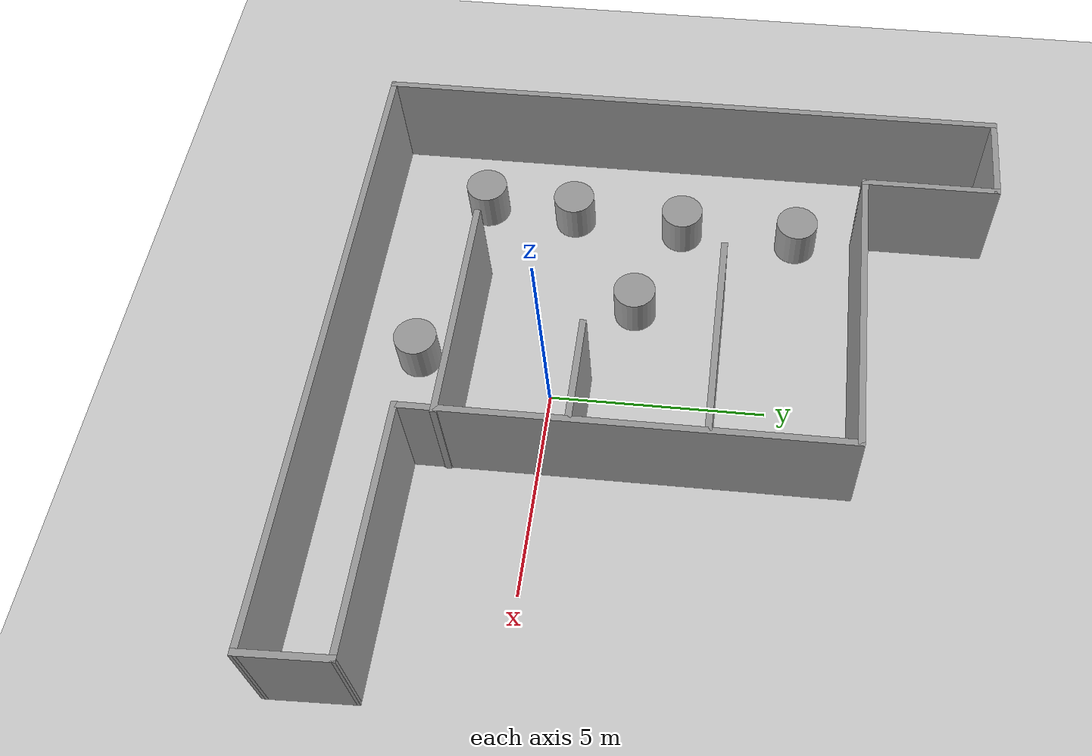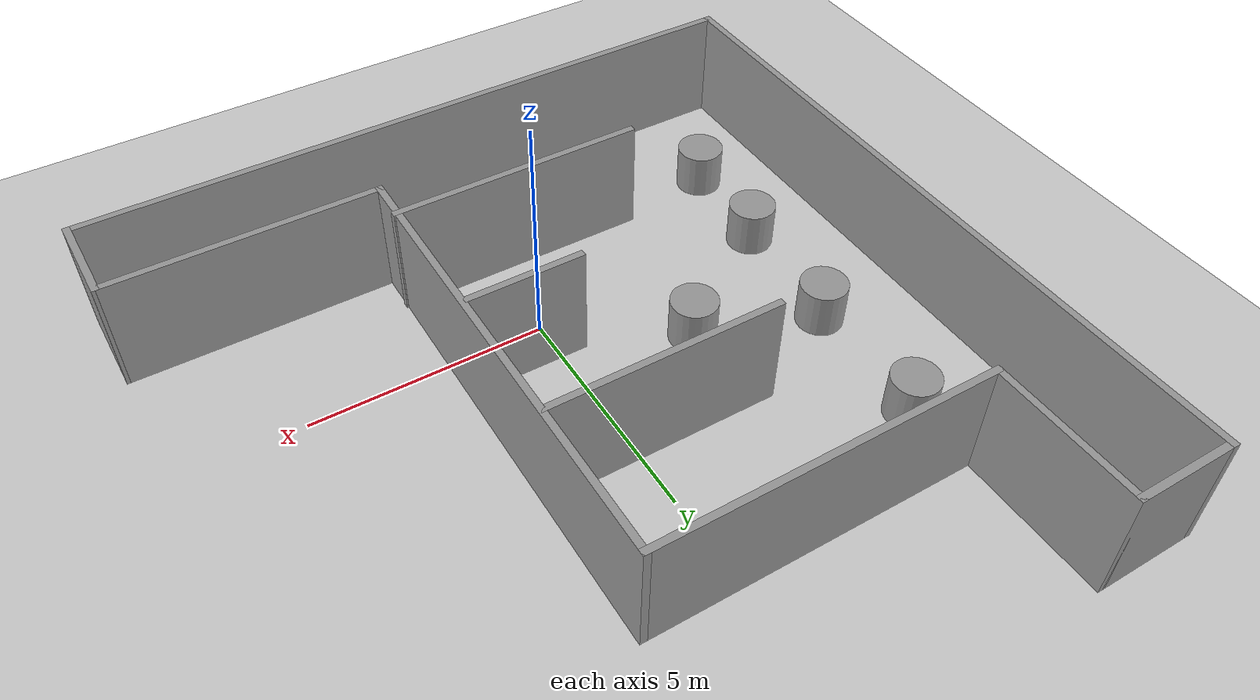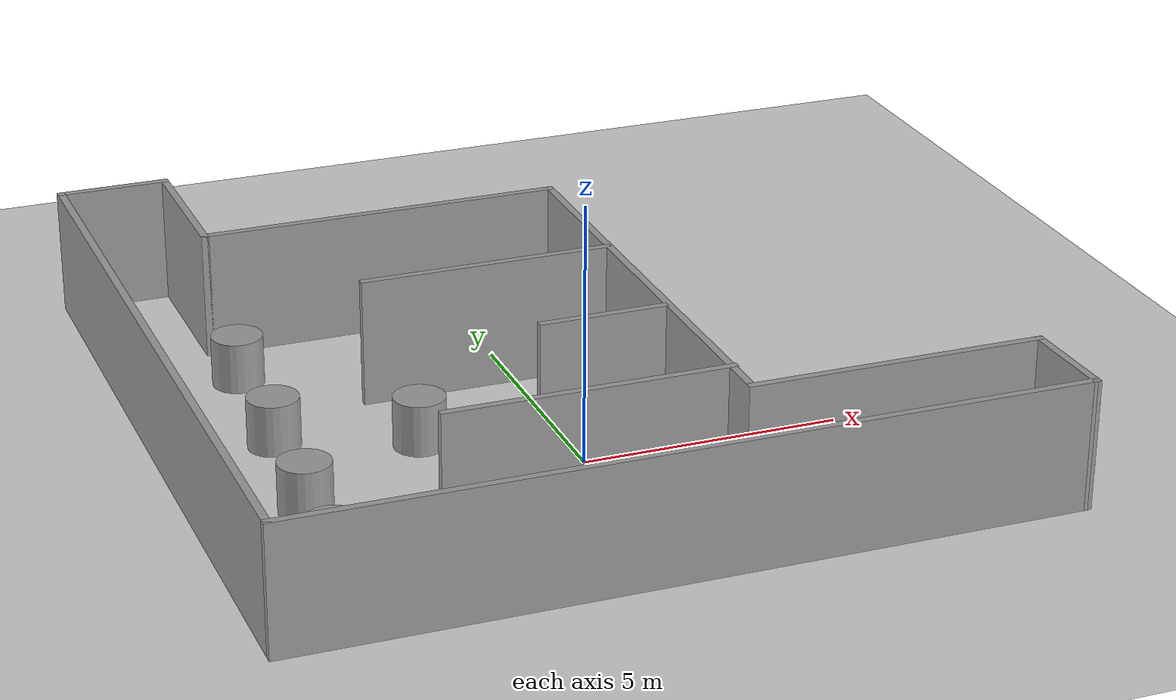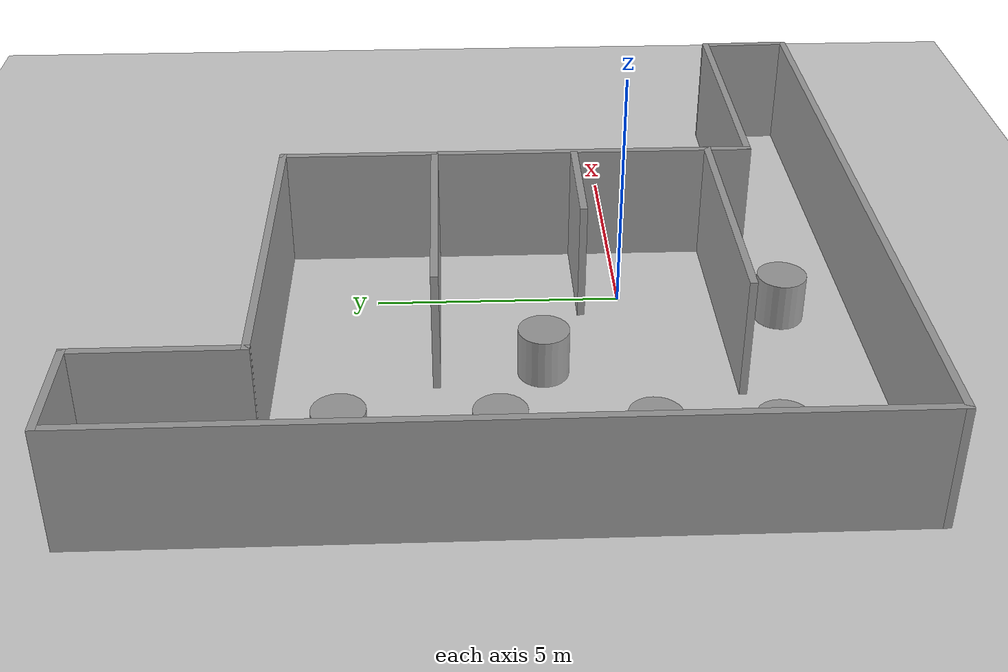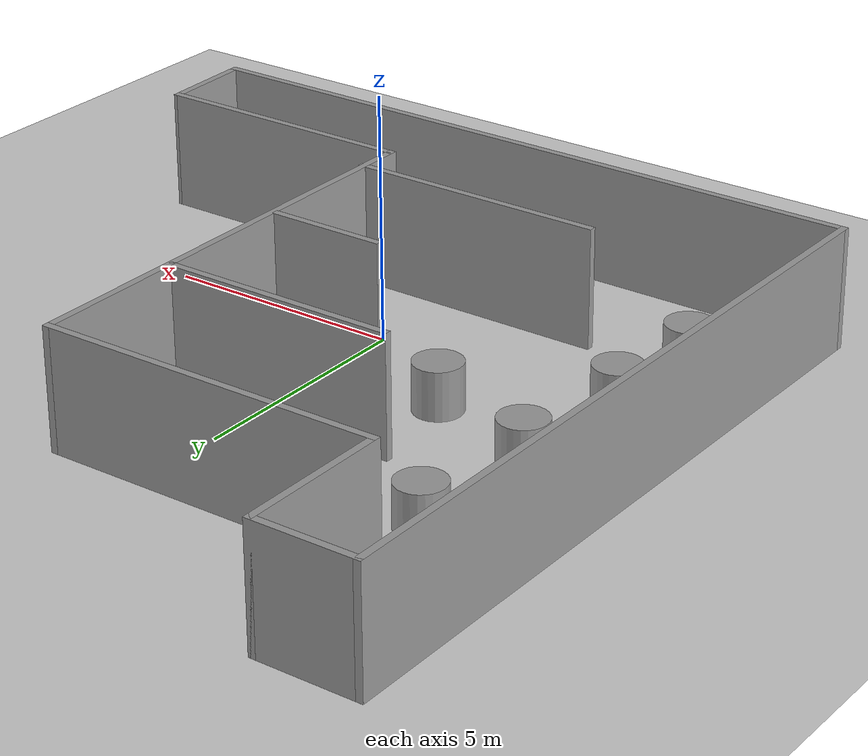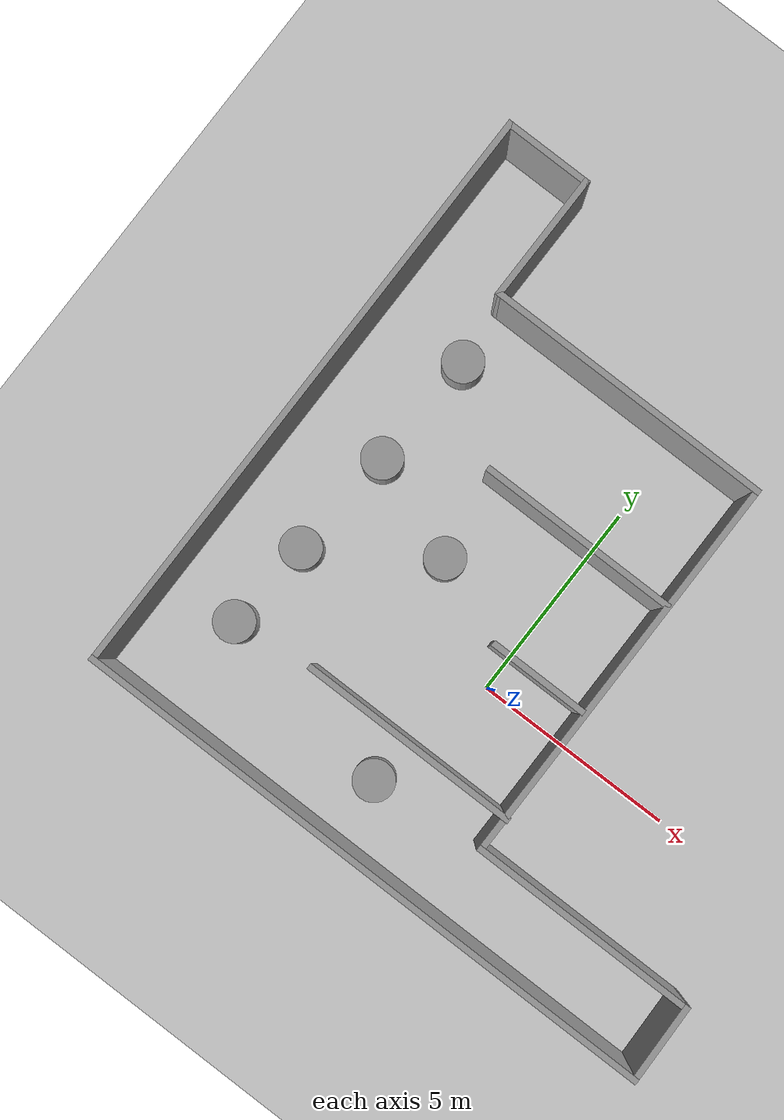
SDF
<sdf version="1.7">
 <world name="default">
  <light name="sun" type="directional">
   <pose>0 0 10 0 -0 0</pose>
   <diffuse>0.8 0.8 0.8 1</diffuse>
   <specular>0.2 0.2 0.2 1</specular>
   <attenuation>
    <range>1000</range>
    <constant>0.9</constant>
    <linear>0.01</linear>
    <quadratic>0.001</quadratic>
   </attenuation>
   <direction>-0.5 0.1 -0.9</direction>
   <spot><inner_angle>0</inner_angle><outer_angle>0</outer_angle><falloff>0</falloff></spot>
  </light>
  <model name="ground_plane">
   <static>1</static>
   <link name="link">
    <collision name="collision">
     <geometry><plane><normal>0 0 1</normal><size>100 100</size></plane></geometry>
     <surface>
      <contact><collide_bitmask>65535</collide_bitmask></contact>
      <friction><ode><mu>100</mu><mu2>50</mu2></ode></friction>
     </surface>
    </collision>
    <visual name="visual">
     <cast_shadows>0</cast_shadows>
     <geometry><plane><normal>0 0 1</normal><size>100 100</size></plane></geometry>
     <material>
      <script><uri>file://media/materials/scripts/gazebo.material</uri><name>Gazebo/Grey</name></script>
     </material>
    </visual>
   </link>
  </model>
  <gravity>0 0 -9.8</gravity>
  <magnetic_field>6e-06 2.3e-05 -4.2e-05</magnetic_field>
  <atmosphere type="adiabatic"/>
  <physics type="ode">
   <max_step_size>0.001</max_step_size>
   <real_time_factor>1</real_time_factor>
   <real_time_update_rate>1000</real_time_update_rate>
  </physics>
  <scene><ambient>0.4 0.4 0.4 1</ambient><background>0.7 0.7 0.7 1</background><shadows>1</shadows></scene>
  <audio><device>default</device></audio>
  <spherical_coordinates>
   <surface_model>EARTH_WGS84</surface_model>
   <latitude_deg>0</latitude_deg>
   <longitude_deg>0</longitude_deg>
   <elevation>0</elevation>
   <heading_deg>0</heading_deg>
  </spherical_coordinates>
  <model name="seinad">
   <pose>0.185973 2.64403 0 0 -0 0</pose>
   <link name="Wall_0">
    <collision name="Wall_0_Collision">
     <geometry><box><size>15 0.15 2.5</size></box></geometry>
     <pose>0 0 1.25 0 -0 0</pose>
    </collision>
    <visual name="Wall_0_Visual">
     <pose>0 0 1.25 0 -0 0</pose>
     <geometry><box><size>15 0.15 2.5</size></box></geometry>
     <material>
      <script><uri>file://media/materials/scripts/gazebo.material</uri><name>Gazebo/Grey</name></script>
      <ambient>1 1 1 1</ambient>
     </material>
     <meta><layer>0</layer></meta>
    </visual>
    <pose>-0.000973 -7.42403 0 0 -0 0</pose>
   </link>
   <link name="Wall_11">
    <collision name="Wall_11_Collision">
     <geometry><box><size>5 0.15 2.5</size></box></geometry>
     <pose>0 0 1.25 0 -0 0</pose>
    </collision>
    <visual name="Wall_11_Visual">
     <pose>0 0 1.25 0 -0 0</pose>
     <geometry><box><size>5 0.15 2.5</size></box></geometry>
     <material>
      <script><uri>file://media/materials/scripts/gazebo.material</uri><name>Gazebo/Grey</name></script>
      <ambient>1 1 1 1</ambient>
     </material>
     <meta><layer>0</layer></meta>
    </visual>
    <pose>-0.689029 1.13614 0 0 -0 3.14159</pose>
   </link>
   <link name="Wall_13">
    <collision name="Wall_13_Collision">
     <geometry><box><size>5.5 0.15 2.5</size></box></geometry>
     <pose>0 0 1.25 0 -0 0</pose>
    </collision>
    <visual name="Wall_13_Visual">
     <pose>0 0 1.25 0 -0 0</pose>
     <geometry><box><size>5.5 0.15 2.5</size></box></geometry>
     <material>
      <script><uri>file://media/materials/scripts/gazebo.material</uri><name>Gazebo/Grey</name></script>
      <ambient>1 1 1 1</ambient>
     </material>
     <meta><layer>0</layer></meta>
    </visual>
    <pose>-0.868672 -4.66835 0 0 -0 3.14159</pose>
   </link>
   <link name="Wall_16">
    <collision name="Wall_16_Collision">
     <geometry><box><size>2.5 0.15 2.5</size></box></geometry>
     <pose>0 0 1.25 0 -0 0</pose>
    </collision>
    <visual name="Wall_16_Visual">
     <pose>0 0 1.25 0 -0 0</pose>
     <geometry><box><size>2.5 0.15 2.5</size></box></geometry>
     <material>
      <script><uri>file://media/materials/scripts/gazebo.material</uri><name>Gazebo/Grey</name></script>
      <ambient>1 1 1 1</ambient>
     </material>
     <meta><layer>0</layer></meta>
    </visual>
    <pose>0.490613 -1.81887 0 0 -0 3.14159</pose>
   </link>
   <link name="Wall_2">
    <collision name="Wall_2_Collision">
     <geometry><box><size>15 0.15 2.5</size></box></geometry>
     <pose>0 0 1.25 0 -0 0</pose>
    </collision>
    <visual name="Wall_2_Visual">
     <pose>0 0 1.25 0 -0 0</pose>
     <geometry><box><size>15 0.15 2.5</size></box></geometry>
     <material>
      <script><uri>file://media/materials/scripts/gazebo.material</uri><name>Gazebo/Grey</name></script>
      <ambient>1 1 1 1</ambient>
     </material>
     <meta><layer>0</layer></meta>
    </visual>
    <pose>-7.42597 0.000973 0 0 -0 1.5708</pose>
   </link>
   <link name="Wall_4">
    <collision name="Wall_4_Collision">
     <geometry><box><size>2.25 0.15 2.5</size></box></geometry>
     <pose>0 0 1.25 0 -0 0</pose>
    </collision>
    <visual name="Wall_4_Visual">
     <pose>0 0 1.25 0 -0 0</pose>
     <geometry><box><size>2.25 0.15 2.5</size></box></geometry>
     <material>
      <script><uri>file://media/materials/scripts/gazebo.material</uri><name>Gazebo/Grey</name></script>
      <ambient>1 1 1 1</ambient>
     </material>
     <meta><layer>0</layer></meta>
    </visual>
    <pose>-6.37597 7.42597 0 0 -0 0</pose>
   </link>
   <link name="Wall_5">
    <collision name="Wall_5_Collision">
     <geometry><box><size>3.25 0.15 2.5</size></box></geometry>
     <pose>0 0 1.25 0 -0 0</pose>
    </collision>
    <visual name="Wall_5_Visual">
     <pose>0 0 1.25 0 -0 0</pose>
     <geometry><box><size>3.25 0.15 2.5</size></box></geometry>
     <material>
      <script><uri>file://media/materials/scripts/gazebo.material</uri><name>Gazebo/Grey</name></script>
      <ambient>1 1 1 1</ambient>
     </material>
     <meta><layer>0</layer></meta>
    </visual>
    <pose>-5.32597 5.87597 0 0 -0 -1.5708</pose>
   </link>
   <link name="Wall_6">
    <collision name="Wall_6_Collision">
     <geometry><box><size>7.25 0.15 2.5</size></box></geometry>
     <pose>0 0 1.25 0 -0 0</pose>
    </collision>
    <visual name="Wall_6_Visual">
     <pose>0 0 1.25 0 -0 0</pose>
     <geometry><box><size>7.25 0.15 2.5</size></box></geometry>
     <material>
      <script><uri>file://media/materials/scripts/gazebo.material</uri><name>Gazebo/Grey</name></script>
      <ambient>1 1 1 1</ambient>
     </material>
     <meta><layer>0</layer></meta>
    </visual>
    <pose>-1.77597 4.32597 0 0 -0 0</pose>
   </link>
   <link name="Wall_7">
    <collision name="Wall_7_Collision">
     <geometry><box><size>10 0.15 2.5</size></box></geometry>
     <pose>0 0 1.25 0 -0 0</pose>
    </collision>
    <visual name="Wall_7_Visual">
     <pose>0 0 1.25 0 -0 0</pose>
     <geometry><box><size>10 0.15 2.5</size></box></geometry>
     <material>
      <script><uri>file://media/materials/scripts/gazebo.material</uri><name>Gazebo/Grey</name></script>
      <ambient>1 1 1 1</ambient>
     </material>
     <meta><layer>0</layer></meta>
    </visual>
    <pose>1.77403 -0.599027 0 0 -0 -1.5708</pose>
   </link>
   <link name="Wall_8">
    <collision name="Wall_8_Collision">
     <geometry><box><size>5.75 0.15 2.5</size></box></geometry>
     <pose>0 0 1.25 0 -0 0</pose>
    </collision>
    <visual name="Wall_8_Visual">
     <pose>0 0 1.25 0 -0 0</pose>
     <geometry><box><size>5.75 0.15 2.5</size></box></geometry>
     <material>
      <script><uri>file://media/materials/scripts/gazebo.material</uri><name>Gazebo/Grey</name></script>
      <ambient>1 1 1 1</ambient>
     </material>
     <meta><layer>0</layer></meta>
    </visual>
    <pose>4.57403 -5.52403 0 0 -0 0</pose>
   </link>
   <link name="Wall_9">
    <collision name="Wall_9_Collision">
     <geometry><box><size>2.05066 0.15 2.5</size></box></geometry>
     <pose>0 0 1.25 0 -0 0</pose>
    </collision>
    <visual name="Wall_9_Visual">
     <pose>0 0 1.25 0 -0 0</pose>
     <geometry><box><size>2.05066 0.15 2.5</size></box></geometry>
     <material>
      <script><uri>file://media/materials/scripts/gazebo.material</uri><name>Gazebo/Grey</name></script>
      <ambient>1 1 1 1</ambient>
     </material>
     <meta><layer>0</layer></meta>
    </visual>
    <pose>7.39903 -6.47403 0 0 -0 -1.54449</pose>
   </link>
   <static>1</static>
  </model>
  <model name="silindrid">
   <link name="link_0">
    <inertial>
     <mass>1</mass>
     <inertia><ixx>0.145833</ixx><ixy>0</ixy><ixz>0</ixz><iyy>0.145833</iyy><iyz>0</iyz><izz>0.125</izz></inertia>
    </inertial>
    <pose>-0.300792 4.0062 0 0 -0 0</pose>
    <visual name="visual">
     <geometry><cylinder><radius>0.5</radius><length>1</length></cylinder></geometry>
     <material>
      <lighting>1</lighting>
      <script><uri>file://media/materials/scripts/gazebo.material</uri><name>Gazebo/Grey</name></script>
      <shader type="pixel"/>
     </material>
    </visual>
    <collision name="collision">
     <geometry><cylinder><radius>0.5</radius><length>1</length></cylinder></geometry>
     <surface>
      <friction>
       <ode><mu>1</mu><mu2>1</mu2><fdir1>0 0 0</fdir1><slip1>0</slip1><slip2>0</slip2></ode>
       <torsional>
        <coefficient>1</coefficient>
        <patch_radius>0</patch_radius>
        <surface_radius>0</surface_radius>
        <use_patch_radius>1</use_patch_radius>
        <ode><slip>0</slip></ode>
       </torsional>
      </friction>
      <bounce><restitution_coefficient>0</restitution_coefficient><threshold>1e+06</threshold></bounce>
      <contact>
       <collide_without_contact>0</collide_without_contact>
       <collide_without_contact_bitmask>1</collide_without_contact_bitmask>
       <collide_bitmask>1</collide_bitmask>
       <ode>
        <soft_cfm>0</soft_cfm>
        <soft_erp>0.2</soft_erp>
        <kp>1e+13</kp>
        <kd>1</kd>
        <max_vel>0.01</max_vel>
        <min_depth>0</min_depth>
       </ode>
       <bullet>
        <split_impulse>1</split_impulse>
        <split_impulse_penetration_threshold>-0.01</split_impulse_penetration_threshold>
        <soft_cfm>0</soft_cfm>
        <soft_erp>0.2</soft_erp>
        <kp>1e+13</kp>
        <kd>1</kd>
       </bullet>
      </contact>
     </surface>
    </collision>
   </link>
   <link name="link_1">
    <inertial>
     <mass>1</mass>
     <inertia><ixx>0.145833</ixx><ixy>0</ixy><ixz>0</ixz><iyy>0.145833</iyy><iyz>0</iyz><izz>0.125</izz></inertia>
    </inertial>
    <pose>-0.406968 1.1503 0 0 -0 0</pose>
    <visual name="visual">
     <geometry><cylinder><radius>0.5</radius><length>1</length></cylinder></geometry>
     <material>
      <lighting>1</lighting>
      <script><uri>file://media/materials/scripts/gazebo.material</uri><name>Gazebo/Grey</name></script>
      <shader type="pixel"/>
     </material>
    </visual>
    <collision name="collision">
     <geometry><cylinder><radius>0.5</radius><length>1</length></cylinder></geometry>
     <surface>
      <friction>
       <ode><mu>1</mu><mu2>1</mu2><fdir1>0 0 0</fdir1><slip1>0</slip1><slip2>0</slip2></ode>
       <torsional>
        <coefficient>1</coefficient>
        <patch_radius>0</patch_radius>
        <surface_radius>0</surface_radius>
        <use_patch_radius>1</use_patch_radius>
        <ode><slip>0</slip></ode>
       </torsional>
      </friction>
      <bounce><restitution_coefficient>0</restitution_coefficient><threshold>1e+06</threshold></bounce>
      <contact>
       <collide_without_contact>0</collide_without_contact>
       <collide_without_contact_bitmask>1</collide_without_contact_bitmask>
       <collide_bitmask>1</collide_bitmask>
       <ode>
        <soft_cfm>0</soft_cfm>
        <soft_erp>0.2</soft_erp>
        <kp>1e+13</kp>
        <kd>1</kd>
        <max_vel>0.01</max_vel>
        <min_depth>0</min_depth>
       </ode>
       <bullet>
        <split_impulse>1</split_impulse>
        <split_impulse_penetration_threshold>-0.01</split_impulse_penetration_threshold>
        <soft_cfm>0</soft_cfm>
        <soft_erp>0.2</soft_erp>
        <kp>1e+13</kp>
        <kd>1</kd>
       </bullet>
      </contact>
     </surface>
    </collision>
   </link>
   <link name="link_2">
    <inertial>
     <mass>1</mass>
     <inertia><ixx>0.145833</ixx><ixy>0</ixy><ixz>0</ixz><iyy>0.145833</iyy><iyz>0</iyz><izz>0.125</izz></inertia>
    </inertial>
    <pose>-0.613915 -1.57701 0 0 -0 0</pose>
    <visual name="visual">
     <geometry><cylinder><radius>0.5</radius><length>1</length></cylinder></geometry>
     <material>
      <lighting>1</lighting>
      <script><uri>file://media/materials/scripts/gazebo.material</uri><name>Gazebo/Grey</name></script>
      <shader type="pixel"/>
     </material>
    </visual>
    <collision name="collision">
     <geometry><cylinder><radius>0.5</radius><length>1</length></cylinder></geometry>
     <surface>
      <friction>
       <ode><mu>1</mu><mu2>1</mu2><fdir1>0 0 0</fdir1><slip1>0</slip1><slip2>0</slip2></ode>
       <torsional>
        <coefficient>1</coefficient>
        <patch_radius>0</patch_radius>
        <surface_radius>0</surface_radius>
        <use_patch_radius>1</use_patch_radius>
        <ode><slip>0</slip></ode>
       </torsional>
      </friction>
      <bounce><restitution_coefficient>0</restitution_coefficient><threshold>1e+06</threshold></bounce>
      <contact>
       <collide_without_contact>0</collide_without_contact>
       <collide_without_contact_bitmask>1</collide_without_contact_bitmask>
       <collide_bitmask>1</collide_bitmask>
       <ode>
        <soft_cfm>0</soft_cfm>
        <soft_erp>0.2</soft_erp>
        <kp>1e+13</kp>
        <kd>1</kd>
        <max_vel>0.01</max_vel>
        <min_depth>0</min_depth>
       </ode>
       <bullet>
        <split_impulse>1</split_impulse>
        <split_impulse_penetration_threshold>-0.01</split_impulse_penetration_threshold>
        <soft_cfm>0</soft_cfm>
        <soft_erp>0.2</soft_erp>
        <kp>1e+13</kp>
        <kd>1</kd>
       </bullet>
      </contact>
     </surface>
    </collision>
   </link>
   <link name="link_3">
    <inertial>
     <mass>1</mass>
     <inertia><ixx>0.145833</ixx><ixy>0</ixy><ixz>0</ixz><iyy>0.145833</iyy><iyz>0</iyz><izz>0.125</izz></inertia>
    </inertial>
    <pose>2.10145 0.228307 0 0 -0 0</pose>
    <visual name="visual">
     <geometry><cylinder><radius>0.5</radius><length>1</length></cylinder></geometry>
     <material>
      <lighting>1</lighting>
      <script><uri>file://media/materials/scripts/gazebo.material</uri><name>Gazebo/Grey</name></script>
      <shader type="pixel"/>
     </material>
    </visual>
    <collision name="collision">
     <geometry><cylinder><radius>0.5</radius><length>1</length></cylinder></geometry>
     <surface>
      <friction>
       <ode><mu>1</mu><mu2>1</mu2><fdir1>0 0 0</fdir1><slip1>0</slip1><slip2>0</slip2></ode>
       <torsional>
        <coefficient>1</coefficient>
        <patch_radius>0</patch_radius>
        <surface_radius>0</surface_radius>
        <use_patch_radius>1</use_patch_radius>
        <ode><slip>0</slip></ode>
       </torsional>
      </friction>
      <bounce><restitution_coefficient>0</restitution_coefficient><threshold>1e+06</threshold></bounce>
      <contact>
       <collide_without_contact>0</collide_without_contact>
       <collide_without_contact_bitmask>1</collide_without_contact_bitmask>
       <collide_bitmask>1</collide_bitmask>
       <ode>
        <soft_cfm>0</soft_cfm>
        <soft_erp>0.2</soft_erp>
        <kp>1e+13</kp>
        <kd>1</kd>
        <max_vel>0.01</max_vel>
        <min_depth>0</min_depth>
       </ode>
       <bullet>
        <split_impulse>1</split_impulse>
        <split_impulse_penetration_threshold>-0.01</split_impulse_penetration_threshold>
        <soft_cfm>0</soft_cfm>
        <soft_erp>0.2</soft_erp>
        <kp>1e+13</kp>
        <kd>1</kd>
       </bullet>
      </contact>
     </surface>
    </collision>
   </link>
   <link name="link_4">
    <inertial>
     <mass>1</mass>
     <inertia><ixx>0.145833</ixx><ixy>0</ixy><ixz>0</ixz><iyy>0.145833</iyy><iyz>0</iyz><izz>0.125</izz></inertia>
    </inertial>
    <pose>-0.77978 -3.80781 0 0 -0 0</pose>
    <visual name="visual">
     <geometry><cylinder><radius>0.5</radius><length>1</length></cylinder></geometry>
     <material>
      <lighting>1</lighting>
      <script><uri>file://media/materials/scripts/gazebo.material</uri><name>Gazebo/Grey</name></script>
      <shader type="pixel"/>
     </material>
    </visual>
    <collision name="collision">
     <geometry><cylinder><radius>0.5</radius><length>1</length></cylinder></geometry>
     <surface>
      <friction>
       <ode><mu>1</mu><mu2>1</mu2><fdir1>0 0 0</fdir1><slip1>0</slip1><slip2>0</slip2></ode>
       <torsional>
        <coefficient>1</coefficient>
        <patch_radius>0</patch_radius>
        <surface_radius>0</surface_radius>
        <use_patch_radius>1</use_patch_radius>
        <ode><slip>0</slip></ode>
       </torsional>
      </friction>
      <bounce><restitution_coefficient>0</restitution_coefficient><threshold>1e+06</threshold></bounce>
      <contact>
       <collide_without_contact>0</collide_without_contact>
       <collide_without_contact_bitmask>1</collide_without_contact_bitmask>
       <collide_bitmask>1</collide_bitmask>
       <ode>
        <soft_cfm>0</soft_cfm>
        <soft_erp>0.2</soft_erp>
        <kp>1e+13</kp>
        <kd>1</kd>
        <max_vel>0.01</max_vel>
        <min_depth>0</min_depth>
       </ode>
       <bullet>
        <split_impulse>1</split_impulse>
        <split_impulse_penetration_threshold>-0.01</split_impulse_penetration_threshold>
        <soft_cfm>0</soft_cfm>
        <soft_erp>0.2</soft_erp>
        <kp>1e+13</kp>
        <kd>1</kd>
       </bullet>
      </contact>
     </surface>
    </collision>
   </link>
   <static>0</static>
   <pose>-4.66774 1.49316 0.5 0 -0 0</pose>
  </model>
  <model name="silinder">
   <link name="link_5">
    <inertial>
     <mass>1</mass>
     <inertia><ixx>0.145833</ixx><ixy>0</ixy><ixz>0</ixz><iyy>0.145833</iyy><iyz>0</iyz><izz>0.125</izz></inertia>
    </inertial>
    <pose>-0 2e-06 0 0 -0 0</pose>
    <visual name="visual">
     <geometry><cylinder><radius>0.5</radius><length>1</length></cylinder></geometry>
     <material>
      <lighting>1</lighting>
      <script><uri>file://media/materials/scripts/gazebo.material</uri><name>Gazebo/Grey</name></script>
      <shader type="pixel"/>
     </material>
    </visual>
    <collision name="collision">
     <geometry><cylinder><radius>0.5</radius><length>1</length></cylinder></geometry>
     <surface>
      <friction>
       <ode><mu>1</mu><mu2>1</mu2><fdir1>0 0 0</fdir1><slip1>0</slip1><slip2>0</slip2></ode>
       <torsional>
        <coefficient>1</coefficient>
        <patch_radius>0</patch_radius>
        <surface_radius>0</surface_radius>
        <use_patch_radius>1</use_patch_radius>
        <ode><slip>0</slip></ode>
       </torsional>
      </friction>
      <bounce><restitution_coefficient>0</restitution_coefficient><threshold>1e+06</threshold></bounce>
      <contact>
       <collide_without_contact>0</collide_without_contact>
       <collide_without_contact_bitmask>1</collide_without_contact_bitmask>
       <collide_bitmask>1</collide_bitmask>
       <ode>
        <soft_cfm>0</soft_cfm>
        <soft_erp>0.2</soft_erp>
        <kp>1e+13</kp>
        <kd>1</kd>
        <max_vel>0.01</max_vel>
        <min_depth>0</min_depth>
       </ode>
       <bullet>
        <split_impulse>1</split_impulse>
        <split_impulse_penetration_threshold>-0.01</split_impulse_penetration_threshold>
        <soft_cfm>0</soft_cfm>
        <soft_erp>0.2</soft_erp>
        <kp>1e+13</kp>
        <kd>1</kd>
       </bullet>
      </contact>
     </surface>
    </collision>
   </link>
   <static>0</static>
   <pose>-0.768785 -3.21609 0.5 0 -0 0</pose>
  </model>
 </world>
</sdf>
